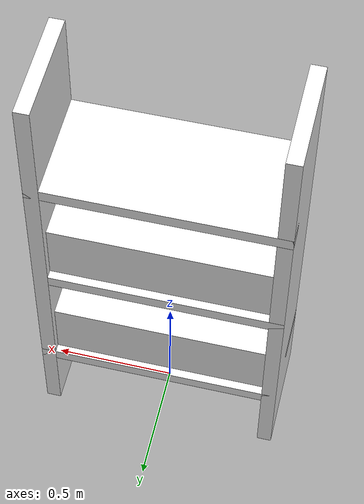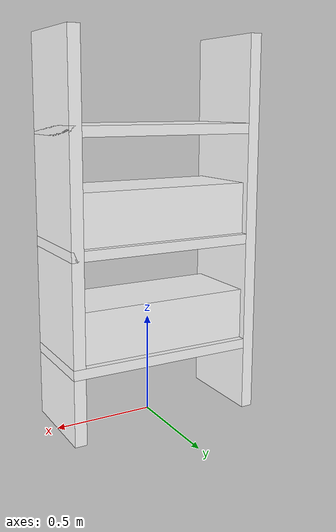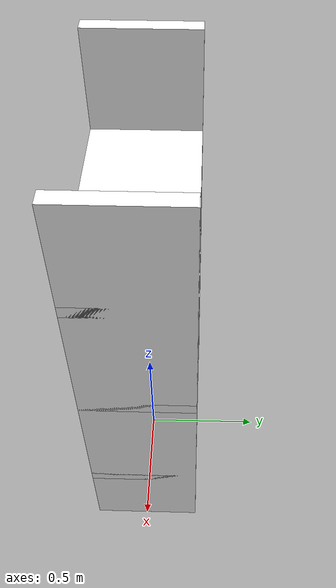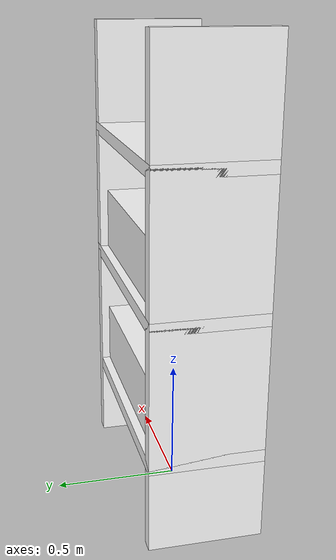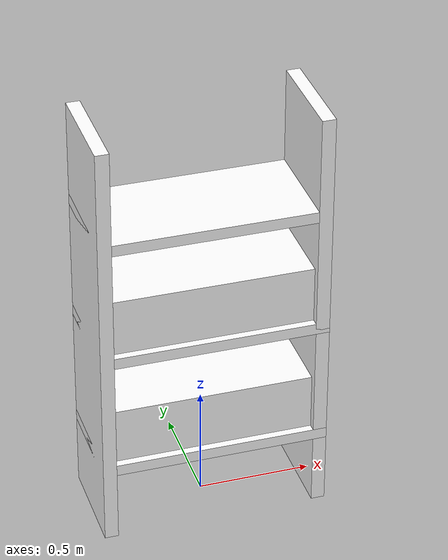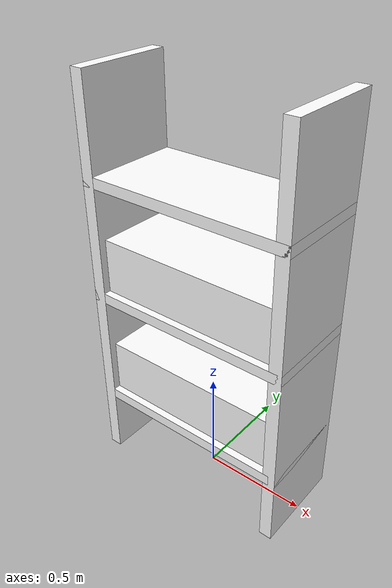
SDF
<?xml version="1.0"?>
<sdf version="1.10">
  <model name="shelf_unit">
    <static>true</static>
      <link name="body">
        <collision name="postA_col"><pose>-0.47 0 0.95 0 0 0</pose>
          <geometry><box><size>0.06 0.45 1.90</size></box></geometry></collision>
        <visual name="postA_vis"><pose>-0.47 0 0.95 0 0 0</pose>
          <geometry><box><size>0.06 0.45 1.90</size></box></geometry>
          <material>
          <diffuse>1 1 1 1</diffuse>
          <specular>0.15 0.15 0.15 1</specular>
          <pbr><metal>
            <albedo_map>model://slam_assets/materials/textures/metal_panel.png</albedo_map>
            <roughness>0.85</roughness><metalness>0.0</metalness>
          </metal></pbr>
        </material>
        </visual>
        <collision name="postB_col"><pose>0.47 0 0.95 0 0 0</pose>
          <geometry><box><size>0.06 0.45 1.90</size></box></geometry></collision>
        <visual name="postB_vis"><pose>0.47 0 0.95 0 0 0</pose>
          <geometry><box><size>0.06 0.45 1.90</size></box></geometry>
          <material>
          <diffuse>1 1 1 1</diffuse>
          <specular>0.15 0.15 0.15 1</specular>
          <pbr><metal>
            <albedo_map>model://slam_assets/materials/textures/metal_panel.png</albedo_map>
            <roughness>0.85</roughness><metalness>0.0</metalness>
          </metal></pbr>
        </material>
        </visual>
        <collision name="deck0_col"><pose>0 0 0.35 0 0 0</pose>
          <geometry><box><size>1.00 0.45 0.05</size></box></geometry></collision>
        <visual name="deck0_vis"><pose>0 0 0.35 0 0 0</pose>
          <geometry><box><size>1.00 0.45 0.05</size></box></geometry>
          <material>
          <diffuse>1 1 1 1</diffuse>
          <specular>0.15 0.15 0.15 1</specular>
          <pbr><metal>
            <albedo_map>model://slam_assets/materials/textures/metal_panel.png</albedo_map>
            <roughness>0.85</roughness><metalness>0.0</metalness>
          </metal></pbr>
        </material>
        </visual>
        <collision name="deck1_col"><pose>0 0 0.90 0 0 0</pose>
          <geometry><box><size>1.00 0.45 0.05</size></box></geometry></collision>
        <visual name="deck1_vis"><pose>0 0 0.90 0 0 0</pose>
          <geometry><box><size>1.00 0.45 0.05</size></box></geometry>
          <material>
          <diffuse>1 1 1 1</diffuse>
          <specular>0.15 0.15 0.15 1</specular>
          <pbr><metal>
            <albedo_map>model://slam_assets/materials/textures/metal_panel.png</albedo_map>
            <roughness>0.85</roughness><metalness>0.0</metalness>
          </metal></pbr>
        </material>
        </visual>
        <collision name="deck2_col"><pose>0 0 1.45 0 0 0</pose>
          <geometry><box><size>1.00 0.45 0.05</size></box></geometry></collision>
        <visual name="deck2_vis"><pose>0 0 1.45 0 0 0</pose>
          <geometry><box><size>1.00 0.45 0.05</size></box></geometry>
          <material>
          <diffuse>1 1 1 1</diffuse>
          <specular>0.15 0.15 0.15 1</specular>
          <pbr><metal>
            <albedo_map>model://slam_assets/materials/textures/metal_panel.png</albedo_map>
            <roughness>0.85</roughness><metalness>0.0</metalness>
          </metal></pbr>
        </material>
        </visual>
        <visual name="bins0_vis"><pose>0 0 0.50 0 0 0</pose>
          <geometry><box><size>0.92 0.38 0.26</size></box></geometry>
          <material>
          <diffuse>1 1 1 1</diffuse>
          <specular>0.15 0.15 0.15 1</specular>
          <pbr><metal>
            <albedo_map>model://slam_assets/materials/textures/shelf_bins.png</albedo_map>
            <roughness>0.85</roughness><metalness>0.0</metalness>
          </metal></pbr>
        </material>
        </visual>
        <visual name="bins1_vis"><pose>0 0 1.05 0 0 0</pose>
          <geometry><box><size>0.92 0.38 0.26</size></box></geometry>
          <material>
          <diffuse>1 1 1 1</diffuse>
          <specular>0.15 0.15 0.15 1</specular>
          <pbr><metal>
            <albedo_map>model://slam_assets/materials/textures/shelf_bins.png</albedo_map>
            <roughness>0.85</roughness><metalness>0.0</metalness>
          </metal></pbr>
        </material>
        </visual>
      </link>
  </model>
</sdf>
